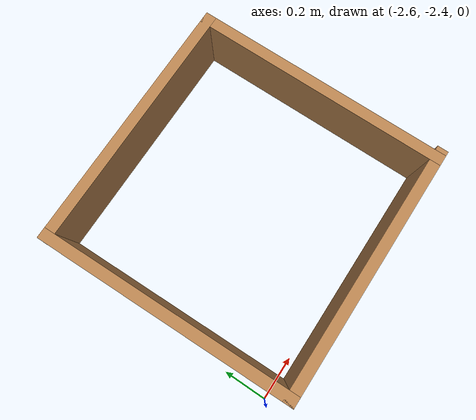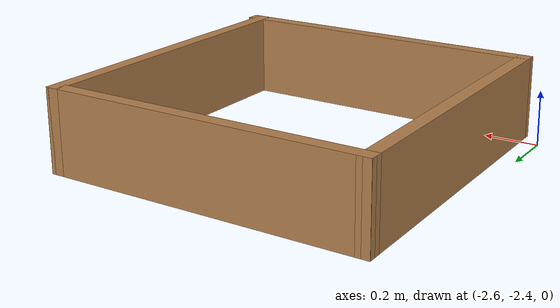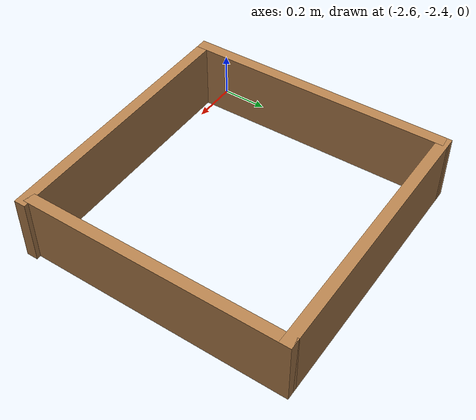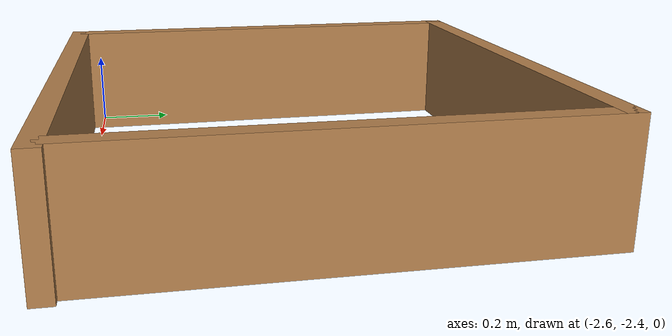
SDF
<?xml version='1.0'?>
<sdf version='1.7'>
  <model name='square120'>
    <pose>-1.27771 -1.23767 0 0 -0 0</pose>
    <link name='Wall_0'>
      <collision name='Wall_0_Collision'>
        <geometry>
          <box>
            <size>1.2 0.05 0.3</size>
          </box>
        </geometry>
        <pose>0 0 0.15 0 -0 0</pose>
      </collision>
      <visual name='Wall_0_Visual'>
        <pose>0 0 0.15 0 -0 0</pose>
        <geometry>
          <box>
            <size>1.2 0.05 0.3</size>
          </box>
        </geometry>
        <material>
          <script>
            <uri>file://media/materials/scripts/gazebo.material</uri>
            <name>Gazebo/Wood</name>
          </script>
          <ambient>1 1 1 1</ambient>
        </material>
        <meta>
          <layer>0</layer>
        </meta>
      </visual>
      <pose>-1.24229 -0.637328 0 0 -0 -1.55341</pose>
    </link>
    <link name='Wall_2'>
      <collision name='Wall_2_Collision'>
        <geometry>
          <box>
            <size>1.2 0.05 0.3</size>
          </box>
        </geometry>
        <pose>0 0 0.15 0 -0 0</pose>
      </collision>
      <visual name='Wall_2_Visual'>
        <pose>0 0 0.15 0 -0 0</pose>
        <geometry>
          <box>
            <size>1.2 0.05 0.3</size>
          </box>
        </geometry>
        <material>
          <script>
            <uri>file://media/materials/scripts/gazebo.material</uri>
            <name>Gazebo/Wood</name>
          </script>
          <ambient>1 1 1 1</ambient>
        </material>
        <meta>
          <layer>0</layer>
        </meta>
      </visual>
      <pose>-0.677285 -0.062328 0 0 -0 0</pose>
    </link>
    <link name='Wall_4'>
      <collision name='Wall_4_Collision'>
        <geometry>
          <box>
            <size>1.2 0.05 0.3</size>
          </box>
        </geometry>
        <pose>0 0 0.15 0 -0 0</pose>
      </collision>
      <visual name='Wall_4_Visual'>
        <pose>0 0 0.15 0 -0 0</pose>
        <geometry>
          <box>
            <size>1.2 0.05 0.3</size>
          </box>
        </geometry>
        <material>
          <script>
            <uri>file://media/materials/scripts/gazebo.material</uri>
            <name>Gazebo/Wood</name>
          </script>
          <ambient>1 1 1 1</ambient>
        </material>
        <meta>
          <layer>0</layer>
        </meta>
      </visual>
      <pose>-0.657285 -1.21233 0 0 -0 0</pose>
    </link>
    <link name='Wall_8'>
      <collision name='Wall_8_Collision'>
        <geometry>
          <box>
            <size>1.2 0.05 0.3</size>
          </box>
        </geometry>
        <pose>0 0 0.15 0 -0 0</pose>
      </collision>
      <visual name='Wall_8_Visual'>
        <pose>0 0 0.15 0 -0 0</pose>
        <geometry>
          <box>
            <size>1.2 0.05 0.3</size>
          </box>
        </geometry>
        <material>
          <script>
            <uri>file://media/materials/scripts/gazebo.material</uri>
            <name>Gazebo/Wood</name>
          </script>
          <ambient>1 1 1 1</ambient>
        </material>
        <meta>
          <layer>0</layer>
        </meta>
      </visual>
      <pose>-0.102285 -0.637328 0 0 -0 -1.5708</pose>
    </link>
    <static>1</static>
  </model>
</sdf>
